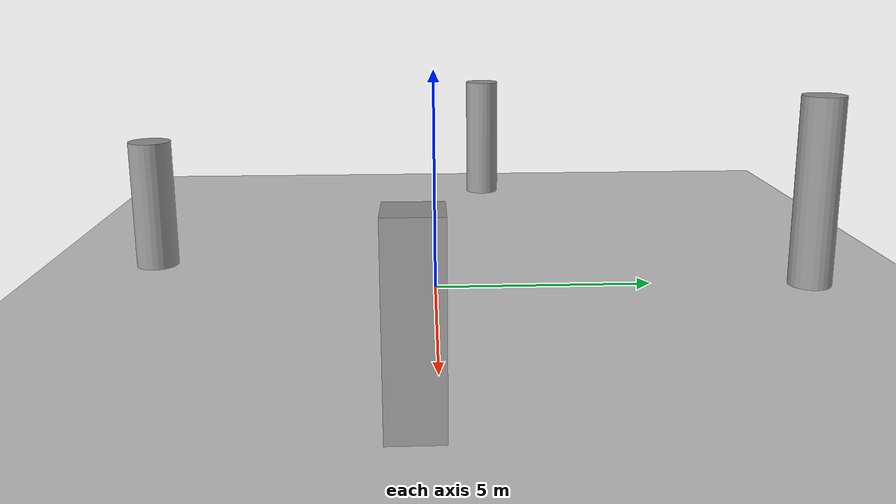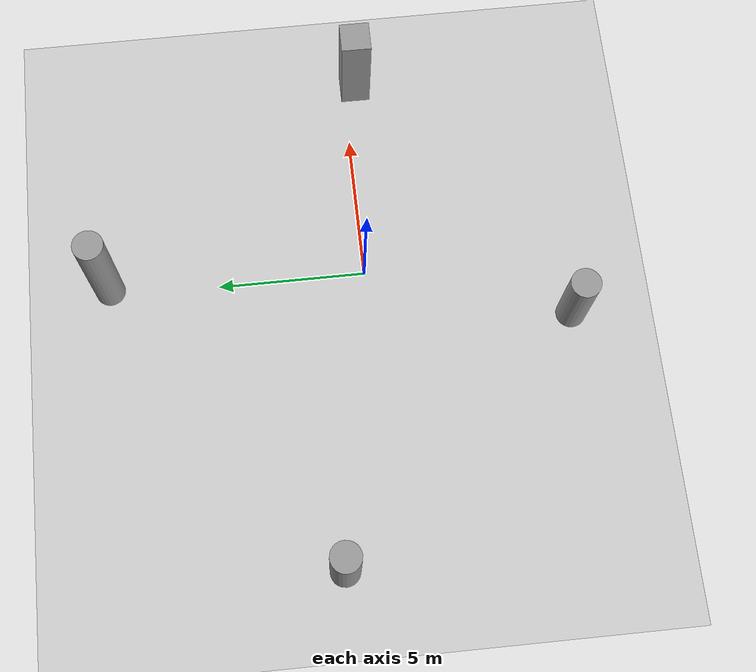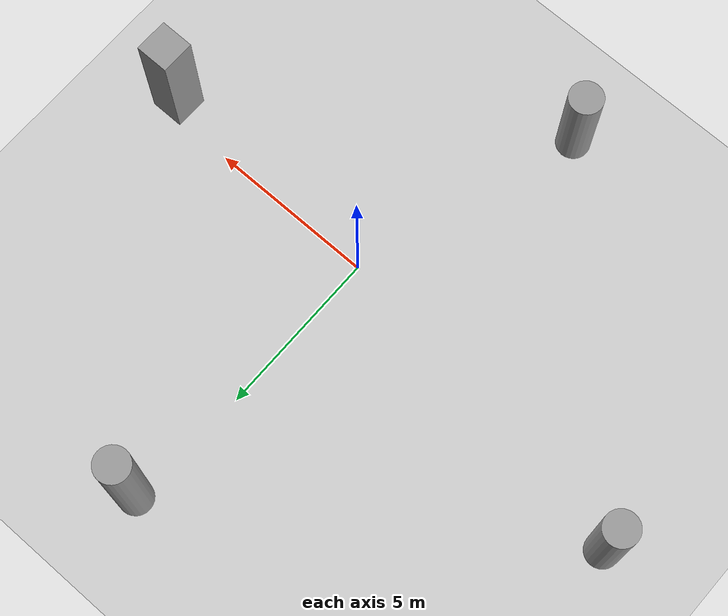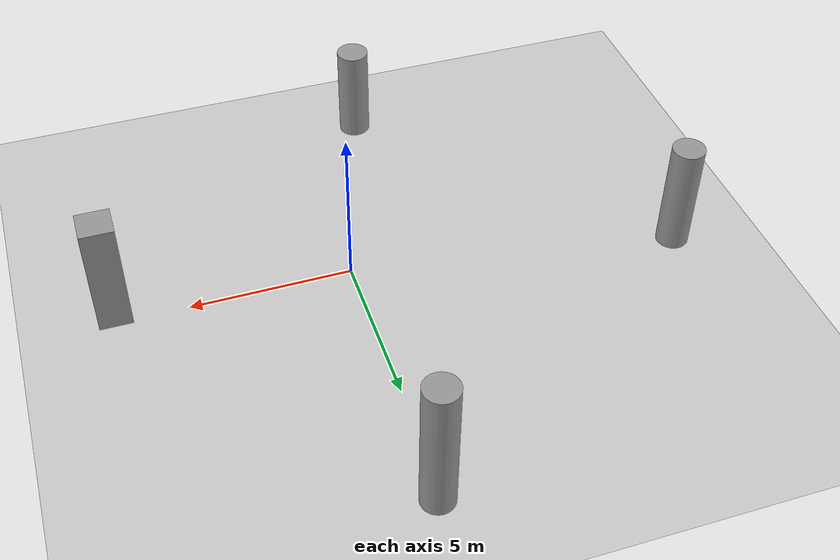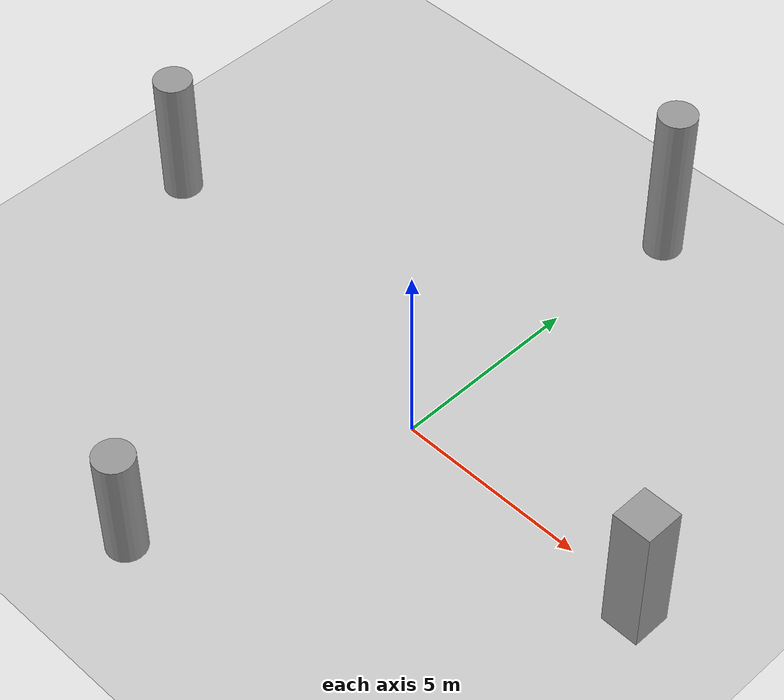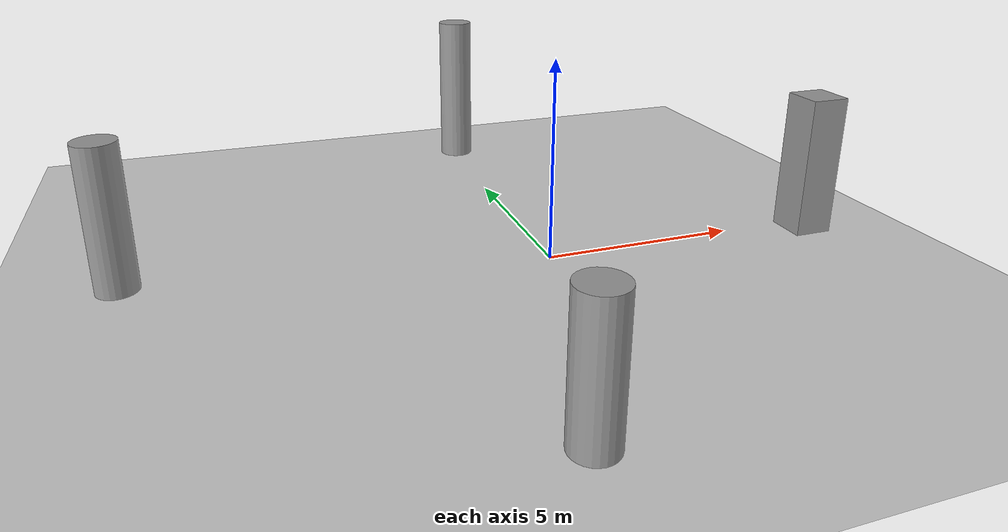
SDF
<sdf version="1.6">
 <world name="default">
  <light name="sun" type="directional">
   <pose>0 0 10 0 -0 0</pose>
   <diffuse>0.8 0.8 0.8 1</diffuse>
   <specular>0.2 0.2 0.2 1</specular>
   <attenuation>
    <range>1000</range>
    <constant>0.9</constant>
    <linear>0.01</linear>
    <quadratic>0.001</quadratic>
   </attenuation>
   <direction>-0.5 0.1 -0.9</direction>
   <spot><inner_angle>0</inner_angle><outer_angle>0</outer_angle><falloff>0</falloff></spot>
  </light>
  <model name="ground_plane">
   <static>1</static>
   <link name="link">
    <collision name="collision">
     <geometry><plane><normal>0 0 1</normal><size>100 100</size></plane></geometry>
     <surface><friction><ode><mu>100</mu><mu2>50</mu2></ode></friction></surface>
    </collision>
    <visual name="visual">
     <cast_shadows>0</cast_shadows>
     <geometry><plane><normal>0 0 1</normal><size>100 100</size></plane></geometry>
     <material>
      <script><uri>file://media/materials/scripts/gazebo.material</uri><name>Gazebo/Grey</name></script>
     </material>
    </visual>
   </link>
  </model>
  <gravity>0 0 -9.8</gravity>
  <magnetic_field>6e-06 2.3e-05 -4.2e-05</magnetic_field>
  <atmosphere type="adiabatic"/>
  <physics name="default_physics" default="0" type="ode">
   <max_step_size>0.001</max_step_size>
   <real_time_factor>1</real_time_factor>
   <real_time_update_rate>1000</real_time_update_rate>
  </physics>
  <scene><ambient>0.4 0.4 0.4 1</ambient><background>0.7 0.7 0.7 1</background><shadows>1</shadows></scene>
  <audio><device>default</device></audio>
  <spherical_coordinates>
   <surface_model>EARTH_WGS84</surface_model>
   <latitude_deg>0</latitude_deg>
   <longitude_deg>0</longitude_deg>
   <elevation>0</elevation>
   <heading_deg>0</heading_deg>
  </spherical_coordinates>
  <model name="unit_cylinder">
   <pose>-2.12023 -6.85127 1.54691 0 -0 8e-06</pose>
   <link name="link">
    <inertial>
     <mass>1</mass>
     <inertia><ixx>0.145833</ixx><ixy>0</ixy><ixz>0</ixz><iyy>0.145833</iyy><iyz>0</iyz><izz>0.125</izz></inertia>
    </inertial>
    <collision name="collision">
     <geometry><cylinder><radius>0.5</radius><length>3.09383</length></cylinder></geometry>
    </collision>
    <visual name="visual">
     <geometry><cylinder><radius>0.5</radius><length>3.09383</length></cylinder></geometry>
     <material>
      <script><name>Gazebo/Grey</name><uri>file://media/materials/scripts/gazebo.material</uri></script>
     </material>
    </visual>
   </link>
  </model>
  <model name="unit_box">
   <pose>7.15951 -0.39142 1.81748 -0 -1e-06 -0.003194</pose>
   <link name="unit_box::link">
    <inertial>
     <mass>1</mass>
     <inertia>
      <ixx>0.166667</ixx>
      <ixy>0</ixy>
      <ixz>0</ixz>
      <iyy>0.166667</iyy>
      <iyz>0</iyz>
      <izz>0.166667</izz>
     </inertia>
    </inertial>
    <collision name="collision"><geometry><box><size>1 1 3.63496</size></box></geometry></collision>
    <visual name="visual">
     <geometry><box><size>1 1 3.63496</size></box></geometry>
     <material>
      <script><name>Gazebo/Grey</name><uri>file://media/materials/scripts/gazebo.material</uri></script>
     </material>
    </visual>
   </link>
  </model>
  <model name="unit_cylinder_0">
   <pose>-10.0099 1.6566 1.79252 0 -0 4.8e-05</pose>
   <link name="link">
    <inertial>
     <mass>1</mass>
     <inertia><ixx>0.145833</ixx><ixy>0</ixy><ixz>0</ixz><iyy>0.145833</iyy><iyz>0</iyz><izz>0.125</izz></inertia>
    </inertial>
    <collision name="collision">
     <geometry><cylinder><radius>0.5</radius><length>3.58507</length></cylinder></geometry>
    </collision>
    <visual name="visual">
     <geometry><cylinder><radius>0.5</radius><length>3.58507</length></cylinder></geometry>
     <material>
      <script><name>Gazebo/Grey</name><uri>file://media/materials/scripts/gazebo.material</uri></script>
     </material>
    </visual>
   </link>
  </model>
  <model name="unit_cylinder_1">
   <pose>0.209103 8.71114 2.2063 -0 -0 -0.000206</pose>
   <link name="link">
    <inertial>
     <mass>1</mass>
     <inertia><ixx>0.145833</ixx><ixy>0</ixy><ixz>0</ixz><iyy>0.145833</iyy><iyz>0</iyz><izz>0.125</izz></inertia>
    </inertial>
    <collision name="collision">
     <geometry><cylinder><radius>0.5</radius><length>4.4126</length></cylinder></geometry>
    </collision>
    <visual name="visual">
     <geometry><cylinder><radius>0.5</radius><length>4.4126</length></cylinder></geometry>
     <material>
      <script><name>Gazebo/Grey</name><uri>file://media/materials/scripts/gazebo.material</uri></script>
     </material>
    </visual>
   </link>
  </model>
 </world>
</sdf>
